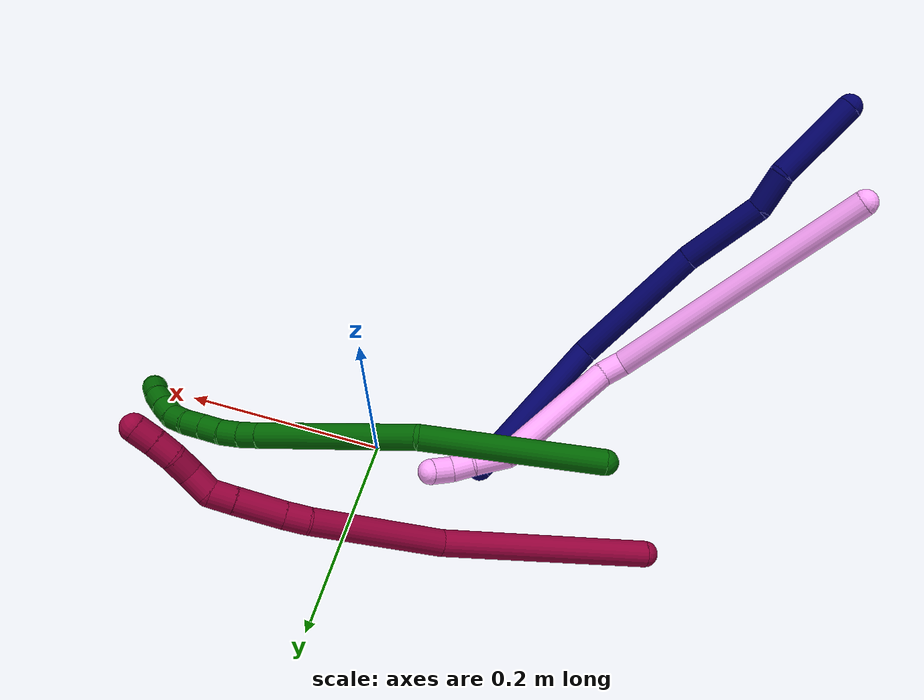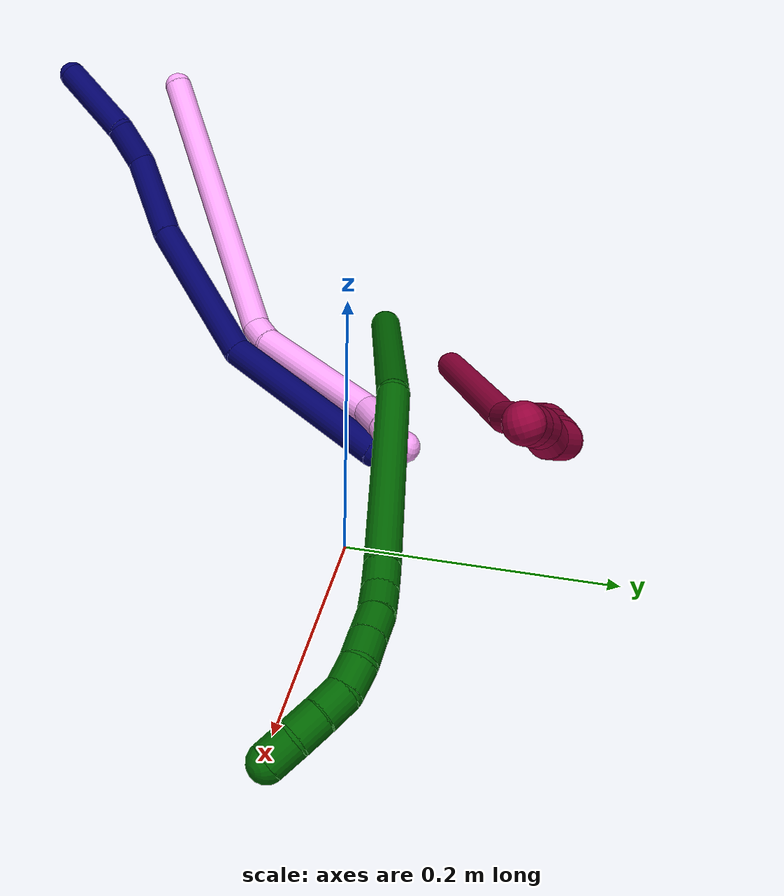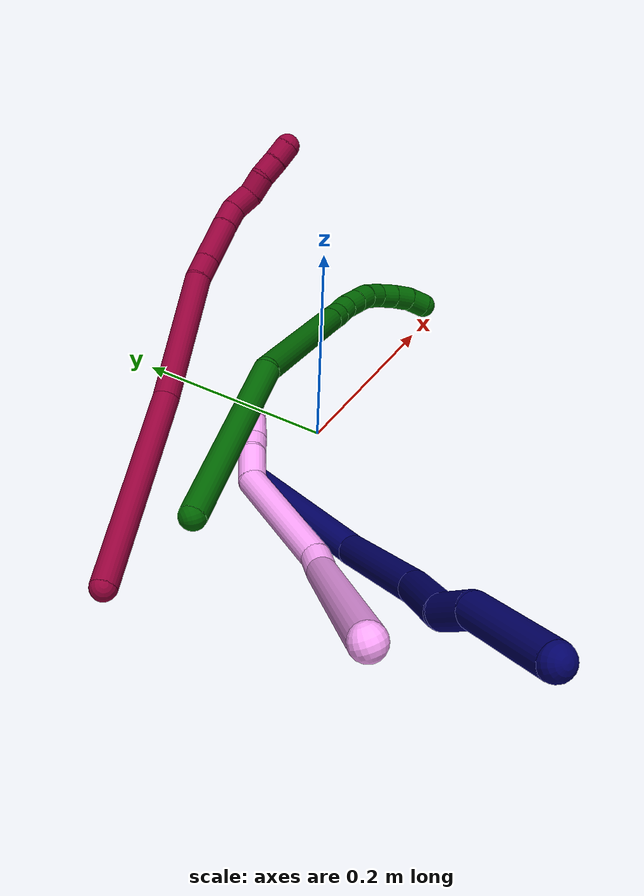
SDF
<sdf version="1.7">
 <world name="default">
  <model name="4">
   <static>0</static>
   <link name="4">
    <collision name="collision-cylinder-e_1_1_4">
     <pose>0.065959 0.120019 0.002861 -1.54696 0.502395 -0.491035</pose>
     <geometry><cylinder><radius>0.0125</radius><length>0.273959</length></cylinder></geometry>
     <surface>
      <friction><ode><mu>1.16</mu><mu2>1.16</mu2><slip1>0</slip1><slip2>0</slip2></ode></friction>
      <contact><ode><kp>1e+06</kp><kd>1</kd><max_vel>0</max_vel><min_depth>0.001</min_depth></ode></contact>
     </surface>
    </collision>
    <visual name="visual-cylinder-e_1_1_4">
     <pose>0.065959 0.120019 0.002861 -1.54696 0.502395 -0.491035</pose>
     <geometry><cylinder><radius>0.0125</radius><length>0.273959</length></cylinder></geometry>
     <material><ambient>1 0.65098 0.996078 1</ambient></material>
    </visual>
    <collision name="collision-cylinder-e_2_4_5">
     <pose>0.136768 0.249248 0.000972 -2.04702 0.437728 -0.699959</pose>
     <geometry><cylinder><radius>0.0125</radius><length>0.022882</length></cylinder></geometry>
     <surface>
      <friction><ode><mu>1.16</mu><mu2>1.16</mu2><slip1>0</slip1><slip2>0</slip2></ode></friction>
      <contact><ode><kp>1e+06</kp><kd>1</kd><max_vel>0</max_vel><min_depth>0.001</min_depth></ode></contact>
     </surface>
    </collision>
    <visual name="visual-cylinder-e_2_4_5">
     <pose>0.136768 0.249248 0.000972 -2.04702 0.437728 -0.699959</pose>
     <geometry><cylinder><radius>0.0125</radius><length>0.022882</length></cylinder></geometry>
     <material><ambient>1 0.65098 0.996078 1</ambient></material>
    </visual>
    <collision name="collision-cylinder-e_3_5_6">
     <pose>0.177742 0.29765 -0.035799 -2.25582 0.619909 -1.18783</pose>
     <geometry><cylinder><radius>0.0125</radius><length>0.124362</length></cylinder></geometry>
     <surface>
      <friction><ode><mu>1.16</mu><mu2>1.16</mu2><slip1>0</slip1><slip2>0</slip2></ode></friction>
      <contact><ode><kp>1e+06</kp><kd>1</kd><max_vel>0</max_vel><min_depth>0.001</min_depth></ode></contact>
     </surface>
    </collision>
    <visual name="visual-cylinder-e_3_5_6">
     <pose>0.177742 0.29765 -0.035799 -2.25582 0.619909 -1.18783</pose>
     <geometry><cylinder><radius>0.0125</radius><length>0.124362</length></cylinder></geometry>
     <material><ambient>1 0.65098 0.996078 1</ambient></material>
    </visual>
    <collision name="collision-cylinder-e_4_6_7">
     <pose>0.216335 0.350396 -0.078446 -2.23576 0.142373 -0.290979</pose>
     <geometry><cylinder><radius>0.0125</radius><length>0.034795</length></cylinder></geometry>
     <surface>
      <friction><ode><mu>1.16</mu><mu2>1.16</mu2><slip1>0</slip1><slip2>0</slip2></ode></friction>
      <contact><ode><kp>1e+06</kp><kd>1</kd><max_vel>0</max_vel><min_depth>0.001</min_depth></ode></contact>
     </surface>
    </collision>
    <visual name="visual-cylinder-e_4_6_7">
     <pose>0.216335 0.350396 -0.078446 -2.23576 0.142373 -0.290979</pose>
     <geometry><cylinder><radius>0.0125</radius><length>0.034795</length></cylinder></geometry>
     <material><ambient>1 0.65098 0.996078 1</ambient></material>
    </visual>
    <collision name="collision-cylinder-e_5_7_8">
     <pose>0.22107 0.373674 -0.093763 -2.02022 0.206889 -0.327706</pose>
     <geometry><cylinder><radius>0.0125</radius><length>0.022067</length></cylinder></geometry>
     <surface>
      <friction><ode><mu>1.16</mu><mu2>1.16</mu2><slip1>0</slip1><slip2>0</slip2></ode></friction>
      <contact><ode><kp>1e+06</kp><kd>1</kd><max_vel>0</max_vel><min_depth>0.001</min_depth></ode></contact>
     </surface>
    </collision>
    <visual name="visual-cylinder-e_5_7_8">
     <pose>0.22107 0.373674 -0.093763 -2.02022 0.206889 -0.327706</pose>
     <geometry><cylinder><radius>0.0125</radius><length>0.022067</length></cylinder></geometry>
     <material><ambient>1 0.65098 0.996078 1</ambient></material>
    </visual>
    <collision name="collision-cylinder-e_6_8_2">
     <pose>0.223437 0.390097 -0.10714 -2.48477 0.009172 -0.026916</pose>
     <geometry><cylinder><radius>0.0125</radius><length>0.021935</length></cylinder></geometry>
     <surface>
      <friction><ode><mu>1.16</mu><mu2>1.16</mu2><slip1>0</slip1><slip2>0</slip2></ode></friction>
      <contact><ode><kp>1e+06</kp><kd>1</kd><max_vel>0</max_vel><min_depth>0.001</min_depth></ode></contact>
     </surface>
    </collision>
    <visual name="visual-cylinder-e_6_8_2">
     <pose>0.223437 0.390097 -0.10714 -2.48477 0.009172 -0.026916</pose>
     <geometry><cylinder><radius>0.0125</radius><length>0.021935</length></cylinder></geometry>
     <material><ambient>1 0.65098 0.996078 1</ambient></material>
    </visual>
    <collision name="collision-sphere-2">
     <pose>0.223538 0.396793 -0.115825 0 -0 0</pose>
     <geometry><sphere><radius>0.0125</radius></sphere></geometry>
     <surface>
      <friction><ode><mu>1.16</mu><mu2>1.16</mu2><slip1>0</slip1><slip2>0</slip2></ode></friction>
      <contact><ode><kp>1e+06</kp><kd>1</kd><max_vel>0</max_vel><min_depth>0.001</min_depth></ode></contact>
     </surface>
    </collision>
    <visual name="visual-sphere-2">
     <pose>0.223538 0.396793 -0.115825 0 -0 0</pose>
     <geometry><sphere><radius>0.0125</radius></sphere></geometry>
     <material><ambient>1 0.65098 0.996078 1</ambient></material>
    </visual>
    <collision name="collision-sphere-4">
     <pose>0.131918 0.240039 0.005723 0 -0 0</pose>
     <geometry><sphere><radius>0.0125</radius></sphere></geometry>
     <surface>
      <friction><ode><mu>1.16</mu><mu2>1.16</mu2><slip1>0</slip1><slip2>0</slip2></ode></friction>
      <contact><ode><kp>1e+06</kp><kd>1</kd><max_vel>0</max_vel><min_depth>0.001</min_depth></ode></contact>
     </surface>
    </collision>
    <visual name="visual-sphere-4">
     <pose>0.131918 0.240039 0.005723 0 -0 0</pose>
     <geometry><sphere><radius>0.0125</radius></sphere></geometry>
     <material><ambient>1 0.65098 0.996078 1</ambient></material>
    </visual>
    <collision name="collision-sphere-1">
     <geometry><sphere><radius>0.0125</radius></sphere></geometry>
     <surface>
      <friction><ode><mu>1.16</mu><mu2>1.16</mu2><slip1>0</slip1><slip2>0</slip2></ode></friction>
      <contact><ode><kp>1e+06</kp><kd>1</kd><max_vel>0</max_vel><min_depth>0.001</min_depth></ode></contact>
     </surface>
    </collision>
    <visual name="visual-sphere-1">
     <geometry><sphere><radius>0.0125</radius></sphere></geometry>
     <material><ambient>1 0.65098 0.996078 1</ambient></material>
    </visual>
    <collision name="collision-sphere-8">
     <pose>0.223337 0.3834 -0.098455 0 -0 0</pose>
     <geometry><sphere><radius>0.0125</radius></sphere></geometry>
     <surface>
      <friction><ode><mu>1.16</mu><mu2>1.16</mu2><slip1>0</slip1><slip2>0</slip2></ode></friction>
      <contact><ode><kp>1e+06</kp><kd>1</kd><max_vel>0</max_vel><min_depth>0.001</min_depth></ode></contact>
     </surface>
    </collision>
    <visual name="visual-sphere-8">
     <pose>0.223337 0.3834 -0.098455 0 -0 0</pose>
     <geometry><sphere><radius>0.0125</radius></sphere></geometry>
     <material><ambient>1 0.65098 0.996078 1</ambient></material>
    </visual>
    <collision name="collision-sphere-5">
     <pose>0.141618 0.258457 -0.003778 0 -0 0</pose>
     <geometry><sphere><radius>0.0125</radius></sphere></geometry>
     <surface>
      <friction><ode><mu>1.16</mu><mu2>1.16</mu2><slip1>0</slip1><slip2>0</slip2></ode></friction>
      <contact><ode><kp>1e+06</kp><kd>1</kd><max_vel>0</max_vel><min_depth>0.001</min_depth></ode></contact>
     </surface>
    </collision>
    <visual name="visual-sphere-5">
     <pose>0.141618 0.258457 -0.003778 0 -0 0</pose>
     <geometry><sphere><radius>0.0125</radius></sphere></geometry>
     <material><ambient>1 0.65098 0.996078 1</ambient></material>
    </visual>
    <collision name="collision-sphere-6">
     <pose>0.213867 0.336844 -0.06782 0 -0 0</pose>
     <geometry><sphere><radius>0.0125</radius></sphere></geometry>
     <surface>
      <friction><ode><mu>1.16</mu><mu2>1.16</mu2><slip1>0</slip1><slip2>0</slip2></ode></friction>
      <contact><ode><kp>1e+06</kp><kd>1</kd><max_vel>0</max_vel><min_depth>0.001</min_depth></ode></contact>
     </surface>
    </collision>
    <visual name="visual-sphere-6">
     <pose>0.213867 0.336844 -0.06782 0 -0 0</pose>
     <geometry><sphere><radius>0.0125</radius></sphere></geometry>
     <material><ambient>1 0.65098 0.996078 1</ambient></material>
    </visual>
    <collision name="collision-sphere-7">
     <pose>0.218804 0.363948 -0.089072 0 -0 0</pose>
     <geometry><sphere><radius>0.0125</radius></sphere></geometry>
     <surface>
      <friction><ode><mu>1.16</mu><mu2>1.16</mu2><slip1>0</slip1><slip2>0</slip2></ode></friction>
      <contact><ode><kp>1e+06</kp><kd>1</kd><max_vel>0</max_vel><min_depth>0.001</min_depth></ode></contact>
     </surface>
    </collision>
    <visual name="visual-sphere-7">
     <pose>0.218804 0.363948 -0.089072 0 -0 0</pose>
     <geometry><sphere><radius>0.0125</radius></sphere></geometry>
     <material><ambient>1 0.65098 0.996078 1</ambient></material>
    </visual>
    <inertial>
     <pose>0.121222 0.209189 -0.021589 0 -0 0</pose>
     <mass>0.5</mass>
     <inertia>
      <ixx>0.000569</ixx>
      <ixy>0</ixy>
      <ixz>0</ixz>
      <iyy>-0.000357</iyy>
      <iyz>0</iyz>
      <izz>-0.00256</izz>
     </inertia>
    </inertial>
   </link>
   <pose>-0.393026 -0.257792 0.231694 -2.66441 0.527124 1.93677</pose>
  </model>
  <model name="6">
   <static>0</static>
   <link name="6">
    <collision name="collision-cylinder-e_1_1_4">
     <pose>0.060648 0.018244 -0.061993 -2.85538 0.753687 -2.44324</pose>
     <geometry><cylinder><radius>0.0125</radius><length>0.177247</length></cylinder></geometry>
     <surface>
      <friction><ode><mu>1.16</mu><mu2>1.16</mu2><slip1>0</slip1><slip2>0</slip2></ode></friction>
      <contact><ode><kp>1e+06</kp><kd>1</kd><max_vel>0</max_vel><min_depth>0.001</min_depth></ode></contact>
     </surface>
    </collision>
    <visual name="visual-cylinder-e_1_1_4">
     <pose>0.060648 0.018244 -0.061993 -2.85538 0.753687 -2.44324</pose>
     <geometry><cylinder><radius>0.0125</radius><length>0.177247</length></cylinder></geometry>
     <material><ambient>0 0.392157 0.003922 1</ambient></material>
    </visual>
    <collision name="collision-cylinder-e_2_4_5">
     <pose>0.157405 0.08045 -0.181815 -2.4916 0.461312 -1.21736</pose>
     <geometry><cylinder><radius>0.0125</radius><length>0.162244</length></cylinder></geometry>
     <surface>
      <friction><ode><mu>1.16</mu><mu2>1.16</mu2><slip1>0</slip1><slip2>0</slip2></ode></friction>
      <contact><ode><kp>1e+06</kp><kd>1</kd><max_vel>0</max_vel><min_depth>0.001</min_depth></ode></contact>
     </surface>
    </collision>
    <visual name="visual-cylinder-e_2_4_5">
     <pose>0.157405 0.08045 -0.181815 -2.4916 0.461312 -1.21736</pose>
     <geometry><cylinder><radius>0.0125</radius><length>0.162244</length></cylinder></geometry>
     <material><ambient>0 0.392157 0.003922 1</ambient></material>
    </visual>
    <collision name="collision-cylinder-e_3_5_6">
     <pose>0.197746 0.129838 -0.246912 -2.50033 0.436577 -1.1778</pose>
     <geometry><cylinder><radius>0.0125</radius><length>0.020017</length></cylinder></geometry>
     <surface>
      <friction><ode><mu>1.16</mu><mu2>1.16</mu2><slip1>0</slip1><slip2>0</slip2></ode></friction>
      <contact><ode><kp>1e+06</kp><kd>1</kd><max_vel>0</max_vel><min_depth>0.001</min_depth></ode></contact>
     </surface>
    </collision>
    <visual name="visual-cylinder-e_3_5_6">
     <pose>0.197746 0.129838 -0.246912 -2.50033 0.436577 -1.1778</pose>
     <geometry><cylinder><radius>0.0125</radius><length>0.020017</length></cylinder></geometry>
     <material><ambient>0 0.392157 0.003922 1</ambient></material>
    </visual>
    <collision name="collision-cylinder-e_4_6_7">
     <pose>0.206835 0.139467 -0.262043 -2.65066 0.49881 -1.58738</pose>
     <geometry><cylinder><radius>0.0125</radius><length>0.020306</length></cylinder></geometry>
     <surface>
      <friction><ode><mu>1.16</mu><mu2>1.16</mu2><slip1>0</slip1><slip2>0</slip2></ode></friction>
      <contact><ode><kp>1e+06</kp><kd>1</kd><max_vel>0</max_vel><min_depth>0.001</min_depth></ode></contact>
     </surface>
    </collision>
    <visual name="visual-cylinder-e_4_6_7">
     <pose>0.206835 0.139467 -0.262043 -2.65066 0.49881 -1.58738</pose>
     <geometry><cylinder><radius>0.0125</radius><length>0.020306</length></cylinder></geometry>
     <material><ambient>0 0.392157 0.003922 1</ambient></material>
    </visual>
    <collision name="collision-cylinder-e_5_7_8">
     <pose>0.215056 0.147529 -0.278567 -2.72247 0.340914 -1.36079</pose>
     <geometry><cylinder><radius>0.0125</radius><length>0.020123</length></cylinder></geometry>
     <surface>
      <friction><ode><mu>1.16</mu><mu2>1.16</mu2><slip1>0</slip1><slip2>0</slip2></ode></friction>
      <contact><ode><kp>1e+06</kp><kd>1</kd><max_vel>0</max_vel><min_depth>0.001</min_depth></ode></contact>
     </surface>
    </collision>
    <visual name="visual-cylinder-e_5_7_8">
     <pose>0.215056 0.147529 -0.278567 -2.72247 0.340914 -1.36079</pose>
     <geometry><cylinder><radius>0.0125</radius><length>0.020123</length></cylinder></geometry>
     <material><ambient>0 0.392157 0.003922 1</ambient></material>
    </visual>
    <collision name="collision-cylinder-e_6_8_9">
     <pose>0.221753 0.15543 -0.295768 -2.69947 0.339179 -1.3022</pose>
     <geometry><cylinder><radius>0.0125</radius><length>0.020037</length></cylinder></geometry>
     <surface>
      <friction><ode><mu>1.16</mu><mu2>1.16</mu2><slip1>0</slip1><slip2>0</slip2></ode></friction>
      <contact><ode><kp>1e+06</kp><kd>1</kd><max_vel>0</max_vel><min_depth>0.001</min_depth></ode></contact>
     </surface>
    </collision>
    <visual name="visual-cylinder-e_6_8_9">
     <pose>0.221753 0.15543 -0.295768 -2.69947 0.339179 -1.3022</pose>
     <geometry><cylinder><radius>0.0125</radius><length>0.020037</length></cylinder></geometry>
     <material><ambient>0 0.392157 0.003922 1</ambient></material>
    </visual>
    <collision name="collision-cylinder-e_7_9_10">
     <pose>0.22593 0.164318 -0.313026 -2.63431 0.084392 -0.322914</pose>
     <geometry><cylinder><radius>0.0125</radius><length>0.02002</length></cylinder></geometry>
     <surface>
      <friction><ode><mu>1.16</mu><mu2>1.16</mu2><slip1>0</slip1><slip2>0</slip2></ode></friction>
      <contact><ode><kp>1e+06</kp><kd>1</kd><max_vel>0</max_vel><min_depth>0.001</min_depth></ode></contact>
     </surface>
    </collision>
    <visual name="visual-cylinder-e_7_9_10">
     <pose>0.22593 0.164318 -0.313026 -2.63431 0.084392 -0.322914</pose>
     <geometry><cylinder><radius>0.0125</radius><length>0.02002</length></cylinder></geometry>
     <material><ambient>0 0.392157 0.003922 1</ambient></material>
    </visual>
    <collision name="collision-cylinder-e_8_10_11">
     <pose>0.225084 0.172083 -0.331159 -2.8409 -0.169869 1.02404</pose>
     <geometry><cylinder><radius>0.0125</radius><length>0.020001</length></cylinder></geometry>
     <surface>
      <friction><ode><mu>1.16</mu><mu2>1.16</mu2><slip1>0</slip1><slip2>0</slip2></ode></friction>
      <contact><ode><kp>1e+06</kp><kd>1</kd><max_vel>0</max_vel><min_depth>0.001</min_depth></ode></contact>
     </surface>
    </collision>
    <visual name="visual-cylinder-e_8_10_11">
     <pose>0.225084 0.172083 -0.331159 -2.8409 -0.169869 1.02404</pose>
     <geometry><cylinder><radius>0.0125</radius><length>0.020001</length></cylinder></geometry>
     <material><ambient>0 0.392157 0.003922 1</ambient></material>
    </visual>
    <collision name="collision-cylinder-e_9_11_12">
     <pose>0.220774 0.178115 -0.349708 -2.81317 -0.265014 1.35481</pose>
     <geometry><cylinder><radius>0.0125</radius><length>0.02</length></cylinder></geometry>
     <surface>
      <friction><ode><mu>1.16</mu><mu2>1.16</mu2><slip1>0</slip1><slip2>0</slip2></ode></friction>
      <contact><ode><kp>1e+06</kp><kd>1</kd><max_vel>0</max_vel><min_depth>0.001</min_depth></ode></contact>
     </surface>
    </collision>
    <visual name="visual-cylinder-e_9_11_12">
     <pose>0.220774 0.178115 -0.349708 -2.81317 -0.265014 1.35481</pose>
     <geometry><cylinder><radius>0.0125</radius><length>0.02</length></cylinder></geometry>
     <material><ambient>0 0.392157 0.003922 1</ambient></material>
    </visual>
    <collision name="collision-cylinder-e_10_12_2">
     <pose>0.213676 0.185103 -0.366905 -2.69359 -0.464217 1.60761</pose>
     <geometry><cylinder><radius>0.0125</radius><length>0.020005</length></cylinder></geometry>
     <surface>
      <friction><ode><mu>1.16</mu><mu2>1.16</mu2><slip1>0</slip1><slip2>0</slip2></ode></friction>
      <contact><ode><kp>1e+06</kp><kd>1</kd><max_vel>0</max_vel><min_depth>0.001</min_depth></ode></contact>
     </surface>
    </collision>
    <visual name="visual-cylinder-e_10_12_2">
     <pose>0.213676 0.185103 -0.366905 -2.69359 -0.464217 1.60761</pose>
     <geometry><cylinder><radius>0.0125</radius><length>0.020005</length></cylinder></geometry>
     <material><ambient>0 0.392157 0.003922 1</ambient></material>
    </visual>
    <collision name="collision-sphere-2">
     <pose>0.209198 0.188977 -0.374966 0 -0 0</pose>
     <geometry><sphere><radius>0.0125</radius></sphere></geometry>
     <surface>
      <friction><ode><mu>1.16</mu><mu2>1.16</mu2><slip1>0</slip1><slip2>0</slip2></ode></friction>
      <contact><ode><kp>1e+06</kp><kd>1</kd><max_vel>0</max_vel><min_depth>0.001</min_depth></ode></contact>
     </surface>
    </collision>
    <visual name="visual-sphere-2">
     <pose>0.209198 0.188977 -0.374966 0 -0 0</pose>
     <geometry><sphere><radius>0.0125</radius></sphere></geometry>
     <material><ambient>0 0.392157 0.003922 1</ambient></material>
    </visual>
    <collision name="collision-sphere-12">
     <pose>0.218154 0.181228 -0.358844 0 -0 0</pose>
     <geometry><sphere><radius>0.0125</radius></sphere></geometry>
     <surface>
      <friction><ode><mu>1.16</mu><mu2>1.16</mu2><slip1>0</slip1><slip2>0</slip2></ode></friction>
      <contact><ode><kp>1e+06</kp><kd>1</kd><max_vel>0</max_vel><min_depth>0.001</min_depth></ode></contact>
     </surface>
    </collision>
    <visual name="visual-sphere-12">
     <pose>0.218154 0.181228 -0.358844 0 -0 0</pose>
     <geometry><sphere><radius>0.0125</radius></sphere></geometry>
     <material><ambient>0 0.392157 0.003922 1</ambient></material>
    </visual>
    <collision name="collision-sphere-11">
     <pose>0.223393 0.175003 -0.340573 0 -0 0</pose>
     <geometry><sphere><radius>0.0125</radius></sphere></geometry>
     <surface>
      <friction><ode><mu>1.16</mu><mu2>1.16</mu2><slip1>0</slip1><slip2>0</slip2></ode></friction>
      <contact><ode><kp>1e+06</kp><kd>1</kd><max_vel>0</max_vel><min_depth>0.001</min_depth></ode></contact>
     </surface>
    </collision>
    <visual name="visual-sphere-11">
     <pose>0.223393 0.175003 -0.340573 0 -0 0</pose>
     <geometry><sphere><radius>0.0125</radius></sphere></geometry>
     <material><ambient>0 0.392157 0.003922 1</ambient></material>
    </visual>
    <collision name="collision-sphere-10">
     <pose>0.226774 0.169164 -0.321744 0 -0 0</pose>
     <geometry><sphere><radius>0.0125</radius></sphere></geometry>
     <surface>
      <friction><ode><mu>1.16</mu><mu2>1.16</mu2><slip1>0</slip1><slip2>0</slip2></ode></friction>
      <contact><ode><kp>1e+06</kp><kd>1</kd><max_vel>0</max_vel><min_depth>0.001</min_depth></ode></contact>
     </surface>
    </collision>
    <visual name="visual-sphere-10">
     <pose>0.226774 0.169164 -0.321744 0 -0 0</pose>
     <geometry><sphere><radius>0.0125</radius></sphere></geometry>
     <material><ambient>0 0.392157 0.003922 1</ambient></material>
    </visual>
    <collision name="collision-sphere-9">
     <pose>0.225087 0.159472 -0.304308 0 -0 0</pose>
     <geometry><sphere><radius>0.0125</radius></sphere></geometry>
     <surface>
      <friction><ode><mu>1.16</mu><mu2>1.16</mu2><slip1>0</slip1><slip2>0</slip2></ode></friction>
      <contact><ode><kp>1e+06</kp><kd>1</kd><max_vel>0</max_vel><min_depth>0.001</min_depth></ode></contact>
     </surface>
    </collision>
    <visual name="visual-sphere-9">
     <pose>0.225087 0.159472 -0.304308 0 -0 0</pose>
     <geometry><sphere><radius>0.0125</radius></sphere></geometry>
     <material><ambient>0 0.392157 0.003922 1</ambient></material>
    </visual>
    <collision name="collision-sphere-4">
     <pose>0.121295 0.036488 -0.123985 0 -0 0</pose>
     <geometry><sphere><radius>0.0125</radius></sphere></geometry>
     <surface>
      <friction><ode><mu>1.16</mu><mu2>1.16</mu2><slip1>0</slip1><slip2>0</slip2></ode></friction>
      <contact><ode><kp>1e+06</kp><kd>1</kd><max_vel>0</max_vel><min_depth>0.001</min_depth></ode></contact>
     </surface>
    </collision>
    <visual name="visual-sphere-4">
     <pose>0.121295 0.036488 -0.123985 0 -0 0</pose>
     <geometry><sphere><radius>0.0125</radius></sphere></geometry>
     <material><ambient>0 0.392157 0.003922 1</ambient></material>
    </visual>
    <collision name="collision-sphere-1">
     <geometry><sphere><radius>0.0125</radius></sphere></geometry>
     <surface>
      <friction><ode><mu>1.16</mu><mu2>1.16</mu2><slip1>0</slip1><slip2>0</slip2></ode></friction>
      <contact><ode><kp>1e+06</kp><kd>1</kd><max_vel>0</max_vel><min_depth>0.001</min_depth></ode></contact>
     </surface>
    </collision>
    <visual name="visual-sphere-1">
     <geometry><sphere><radius>0.0125</radius></sphere></geometry>
     <material><ambient>0 0.392157 0.003922 1</ambient></material>
    </visual>
    <collision name="collision-sphere-8">
     <pose>0.21842 0.151388 -0.287229 0 -0 0</pose>
     <geometry><sphere><radius>0.0125</radius></sphere></geometry>
     <surface>
      <friction><ode><mu>1.16</mu><mu2>1.16</mu2><slip1>0</slip1><slip2>0</slip2></ode></friction>
      <contact><ode><kp>1e+06</kp><kd>1</kd><max_vel>0</max_vel><min_depth>0.001</min_depth></ode></contact>
     </surface>
    </collision>
    <visual name="visual-sphere-8">
     <pose>0.21842 0.151388 -0.287229 0 -0 0</pose>
     <geometry><sphere><radius>0.0125</radius></sphere></geometry>
     <material><ambient>0 0.392157 0.003922 1</ambient></material>
    </visual>
    <collision name="collision-sphere-5">
     <pose>0.193514 0.124412 -0.239644 0 -0 0</pose>
     <geometry><sphere><radius>0.0125</radius></sphere></geometry>
     <surface>
      <friction><ode><mu>1.16</mu><mu2>1.16</mu2><slip1>0</slip1><slip2>0</slip2></ode></friction>
      <contact><ode><kp>1e+06</kp><kd>1</kd><max_vel>0</max_vel><min_depth>0.001</min_depth></ode></contact>
     </surface>
    </collision>
    <visual name="visual-sphere-5">
     <pose>0.193514 0.124412 -0.239644 0 -0 0</pose>
     <geometry><sphere><radius>0.0125</radius></sphere></geometry>
     <material><ambient>0 0.392157 0.003922 1</ambient></material>
    </visual>
    <collision name="collision-sphere-6">
     <pose>0.201978 0.135263 -0.25418 0 -0 0</pose>
     <geometry><sphere><radius>0.0125</radius></sphere></geometry>
     <surface>
      <friction><ode><mu>1.16</mu><mu2>1.16</mu2><slip1>0</slip1><slip2>0</slip2></ode></friction>
      <contact><ode><kp>1e+06</kp><kd>1</kd><max_vel>0</max_vel><min_depth>0.001</min_depth></ode></contact>
     </surface>
    </collision>
    <visual name="visual-sphere-6">
     <pose>0.201978 0.135263 -0.25418 0 -0 0</pose>
     <geometry><sphere><radius>0.0125</radius></sphere></geometry>
     <material><ambient>0 0.392157 0.003922 1</ambient></material>
    </visual>
    <collision name="collision-sphere-7">
     <pose>0.211692 0.14367 -0.269906 0 -0 0</pose>
     <geometry><sphere><radius>0.0125</radius></sphere></geometry>
     <surface>
      <friction><ode><mu>1.16</mu><mu2>1.16</mu2><slip1>0</slip1><slip2>0</slip2></ode></friction>
      <contact><ode><kp>1e+06</kp><kd>1</kd><max_vel>0</max_vel><min_depth>0.001</min_depth></ode></contact>
     </surface>
    </collision>
    <visual name="visual-sphere-7">
     <pose>0.211692 0.14367 -0.269906 0 -0 0</pose>
     <geometry><sphere><radius>0.0125</radius></sphere></geometry>
     <material><ambient>0 0.392157 0.003922 1</ambient></material>
    </visual>
    <inertial>
     <pose>0.141864 0.083594 -0.179013 0 -0 0</pose>
     <mass>0.5</mass>
     <inertia>
      <ixx>-0.000658</ixx>
      <ixy>0</ixy>
      <ixz>0</ixz>
      <iyy>-0.000118</iyy>
      <iyz>0</iyz>
      <izz>-0.000812</izz>
     </inertia>
    </inertial>
   </link>
   <pose>-0.227486 -0.015238 0.076167 -1.62269 -0.453304 1.02022</pose>
  </model>
  <model name="7">
   <static>0</static>
   <link name="7">
    <collision name="collision-cylinder-e_1_1_4">
     <pose>-0.032165 0.004868 0.071407 -0.068072 -0.422356 0.014598</pose>
     <geometry><cylinder><radius>0.0125</radius><length>0.156936</length></cylinder></geometry>
     <surface>
      <friction><ode><mu>1.16</mu><mu2>1.16</mu2><slip1>0</slip1><slip2>0</slip2></ode></friction>
      <contact><ode><kp>1e+06</kp><kd>1</kd><max_vel>0</max_vel><min_depth>0.001</min_depth></ode></contact>
     </surface>
    </collision>
    <visual name="visual-cylinder-e_1_1_4">
     <pose>-0.032165 0.004868 0.071407 -0.068072 -0.422356 0.014598</pose>
     <geometry><cylinder><radius>0.0125</radius><length>0.156936</length></cylinder></geometry>
     <material><ambient>0.003922 0 0.403922 1</ambient></material>
    </visual>
    <collision name="collision-cylinder-e_2_4_5">
     <pose>-0.069682 0.022132 0.209735 -0.183149 -0.078484 0.007211</pose>
     <geometry><cylinder><radius>0.0125</radius><length>0.136539</length></cylinder></geometry>
     <surface>
      <friction><ode><mu>1.16</mu><mu2>1.16</mu2><slip1>0</slip1><slip2>0</slip2></ode></friction>
      <contact><ode><kp>1e+06</kp><kd>1</kd><max_vel>0</max_vel><min_depth>0.001</min_depth></ode></contact>
     </surface>
    </collision>
    <visual name="visual-cylinder-e_2_4_5">
     <pose>-0.069682 0.022132 0.209735 -0.183149 -0.078484 0.007211</pose>
     <geometry><cylinder><radius>0.0125</radius><length>0.136539</length></cylinder></geometry>
     <material><ambient>0.003922 0 0.403922 1</ambient></material>
    </visual>
    <collision name="collision-cylinder-e_3_5_6">
     <pose>-0.073203 0.046942 0.31593 -0.306173 0.044445 -0.006859</pose>
     <geometry><cylinder><radius>0.0125</radius><length>0.082459</length></cylinder></geometry>
     <surface>
      <friction><ode><mu>1.16</mu><mu2>1.16</mu2><slip1>0</slip1><slip2>0</slip2></ode></friction>
      <contact><ode><kp>1e+06</kp><kd>1</kd><max_vel>0</max_vel><min_depth>0.001</min_depth></ode></contact>
     </surface>
    </collision>
    <visual name="visual-cylinder-e_3_5_6">
     <pose>-0.073203 0.046942 0.31593 -0.306173 0.044445 -0.006859</pose>
     <geometry><cylinder><radius>0.0125</radius><length>0.082459</length></cylinder></geometry>
     <material><ambient>0.003922 0 0.403922 1</ambient></material>
    </visual>
    <collision name="collision-cylinder-e_4_6_7">
     <pose>-0.069793 0.058206 0.374174 0.060599 0.08287 0.002513</pose>
     <geometry><cylinder><radius>0.0125</radius><length>0.038141</length></cylinder></geometry>
     <surface>
      <friction><ode><mu>1.16</mu><mu2>1.16</mu2><slip1>0</slip1><slip2>0</slip2></ode></friction>
      <contact><ode><kp>1e+06</kp><kd>1</kd><max_vel>0</max_vel><min_depth>0.001</min_depth></ode></contact>
     </surface>
    </collision>
    <visual name="visual-cylinder-e_4_6_7">
     <pose>-0.069793 0.058206 0.374174 0.060599 0.08287 0.002513</pose>
     <geometry><cylinder><radius>0.0125</radius><length>0.038141</length></cylinder></geometry>
     <material><ambient>0.003922 0 0.403922 1</ambient></material>
    </visual>
    <collision name="collision-cylinder-e_5_7_2">
     <pose>-0.077524 0.062559 0.434722 -0.131595 -0.218442 0.014451</pose>
     <geometry><cylinder><radius>0.0125</radius><length>0.085924</length></cylinder></geometry>
     <surface>
      <friction><ode><mu>1.16</mu><mu2>1.16</mu2><slip1>0</slip1><slip2>0</slip2></ode></friction>
      <contact><ode><kp>1e+06</kp><kd>1</kd><max_vel>0</max_vel><min_depth>0.001</min_depth></ode></contact>
     </surface>
    </collision>
    <visual name="visual-cylinder-e_5_7_2">
     <pose>-0.077524 0.062559 0.434722 -0.131595 -0.218442 0.014451</pose>
     <geometry><cylinder><radius>0.0125</radius><length>0.085924</length></cylinder></geometry>
     <material><ambient>0.003922 0 0.403922 1</ambient></material>
    </visual>
    <collision name="collision-sphere-2">
     <pose>-0.086834 0.068062 0.476301 0 -0 0</pose>
     <geometry><sphere><radius>0.0125</radius></sphere></geometry>
     <surface>
      <friction><ode><mu>1.16</mu><mu2>1.16</mu2><slip1>0</slip1><slip2>0</slip2></ode></friction>
      <contact><ode><kp>1e+06</kp><kd>1</kd><max_vel>0</max_vel><min_depth>0.001</min_depth></ode></contact>
     </surface>
    </collision>
    <visual name="visual-sphere-2">
     <pose>-0.086834 0.068062 0.476301 0 -0 0</pose>
     <geometry><sphere><radius>0.0125</radius></sphere></geometry>
     <material><ambient>0.003922 0 0.403922 1</ambient></material>
    </visual>
    <collision name="collision-sphere-7">
     <pose>-0.068214 0.057055 0.393144 0 -0 0</pose>
     <geometry><sphere><radius>0.0125</radius></sphere></geometry>
     <surface>
      <friction><ode><mu>1.16</mu><mu2>1.16</mu2><slip1>0</slip1><slip2>0</slip2></ode></friction>
      <contact><ode><kp>1e+06</kp><kd>1</kd><max_vel>0</max_vel><min_depth>0.001</min_depth></ode></contact>
     </surface>
    </collision>
    <visual name="visual-sphere-7">
     <pose>-0.068214 0.057055 0.393144 0 -0 0</pose>
     <geometry><sphere><radius>0.0125</radius></sphere></geometry>
     <material><ambient>0.003922 0 0.403922 1</ambient></material>
    </visual>
    <collision name="collision-sphere-6">
     <pose>-0.071371 0.059357 0.355203 0 -0 0</pose>
     <geometry><sphere><radius>0.0125</radius></sphere></geometry>
     <surface>
      <friction><ode><mu>1.16</mu><mu2>1.16</mu2><slip1>0</slip1><slip2>0</slip2></ode></friction>
      <contact><ode><kp>1e+06</kp><kd>1</kd><max_vel>0</max_vel><min_depth>0.001</min_depth></ode></contact>
     </surface>
    </collision>
    <visual name="visual-sphere-6">
     <pose>-0.071371 0.059357 0.355203 0 -0 0</pose>
     <geometry><sphere><radius>0.0125</radius></sphere></geometry>
     <material><ambient>0.003922 0 0.403922 1</ambient></material>
    </visual>
    <collision name="collision-sphere-5">
     <pose>-0.075035 0.034528 0.276656 0 -0 0</pose>
     <geometry><sphere><radius>0.0125</radius></sphere></geometry>
     <surface>
      <friction><ode><mu>1.16</mu><mu2>1.16</mu2><slip1>0</slip1><slip2>0</slip2></ode></friction>
      <contact><ode><kp>1e+06</kp><kd>1</kd><max_vel>0</max_vel><min_depth>0.001</min_depth></ode></contact>
     </surface>
    </collision>
    <visual name="visual-sphere-5">
     <pose>-0.075035 0.034528 0.276656 0 -0 0</pose>
     <geometry><sphere><radius>0.0125</radius></sphere></geometry>
     <material><ambient>0.003922 0 0.403922 1</ambient></material>
    </visual>
    <collision name="collision-sphere-1">
     <geometry><sphere><radius>0.0125</radius></sphere></geometry>
     <surface>
      <friction><ode><mu>1.16</mu><mu2>1.16</mu2><slip1>0</slip1><slip2>0</slip2></ode></friction>
      <contact><ode><kp>1e+06</kp><kd>1</kd><max_vel>0</max_vel><min_depth>0.001</min_depth></ode></contact>
     </surface>
    </collision>
    <visual name="visual-sphere-1">
     <geometry><sphere><radius>0.0125</radius></sphere></geometry>
     <material><ambient>0.003922 0 0.403922 1</ambient></material>
    </visual>
    <collision name="collision-sphere-4">
     <pose>-0.06433 0.009737 0.142814 0 -0 0</pose>
     <geometry><sphere><radius>0.0125</radius></sphere></geometry>
     <surface>
      <friction><ode><mu>1.16</mu><mu2>1.16</mu2><slip1>0</slip1><slip2>0</slip2></ode></friction>
      <contact><ode><kp>1e+06</kp><kd>1</kd><max_vel>0</max_vel><min_depth>0.001</min_depth></ode></contact>
     </surface>
    </collision>
    <visual name="visual-sphere-4">
     <pose>-0.06433 0.009737 0.142814 0 -0 0</pose>
     <geometry><sphere><radius>0.0125</radius></sphere></geometry>
     <material><ambient>0.003922 0 0.403922 1</ambient></material>
    </visual>
    <inertial>
     <pose>-0.059843 0.030504 0.235039 0 -0 0</pose>
     <mass>0.5</mass>
     <inertia>
      <ixx>0.000627</ixx>
      <ixy>0</ixy>
      <ixz>0</ixz>
      <iyy>0.000663</iyy>
      <iyz>0</iyz>
      <izz>0.000117</izz>
     </inertia>
    </inertial>
   </link>
   <pose>-0.108369 -0.001135 0.018959 -0.306894 -0.837658 1.45155</pose>
  </model>
  <model name="8">
   <static>0</static>
   <link name="8">
    <collision name="collision-cylinder-e_1_1_4">
     <pose>0.097162 0.001821 -0.022315 -3.06017 1.34432 -3.0393</pose>
     <geometry><cylinder><radius>0.0125</radius><length>0.199417</length></cylinder></geometry>
     <surface>
      <friction><ode><mu>1.16</mu><mu2>1.16</mu2><slip1>0</slip1><slip2>0</slip2></ode></friction>
      <contact><ode><kp>1e+06</kp><kd>1</kd><max_vel>0</max_vel><min_depth>0.001</min_depth></ode></contact>
     </surface>
    </collision>
    <visual name="visual-cylinder-e_1_1_4">
     <pose>0.097162 0.001821 -0.022315 -3.06017 1.34432 -3.0393</pose>
     <geometry><cylinder><radius>0.0125</radius><length>0.199417</length></cylinder></geometry>
     <material><ambient>0.584314 0 0.227451 1</ambient></material>
    </visual>
    <collision name="collision-cylinder-e_2_4_5">
     <pose>0.258263 0.007611 -0.045197 -1.71267 1.50817 -1.6504</pose>
     <geometry><cylinder><radius>0.0125</radius><length>0.128128</length></cylinder></geometry>
     <surface>
      <friction><ode><mu>1.16</mu><mu2>1.16</mu2><slip1>0</slip1><slip2>0</slip2></ode></friction>
      <contact><ode><kp>1e+06</kp><kd>1</kd><max_vel>0</max_vel><min_depth>0.001</min_depth></ode></contact>
     </surface>
    </collision>
    <visual name="visual-cylinder-e_2_4_5">
     <pose>0.258263 0.007611 -0.045197 -1.71267 1.50817 -1.6504</pose>
     <geometry><cylinder><radius>0.0125</radius><length>0.128128</length></cylinder></geometry>
     <material><ambient>0.584314 0 0.227451 1</ambient></material>
    </visual>
    <collision name="collision-cylinder-e_3_5_6">
     <pose>0.333056 0.010398 -0.046837 2.30768 1.42477 2.19387</pose>
     <geometry><cylinder><radius>0.0125</radius><length>0.021942</length></cylinder></geometry>
     <surface>
      <friction><ode><mu>1.16</mu><mu2>1.16</mu2><slip1>0</slip1><slip2>0</slip2></ode></friction>
      <contact><ode><kp>1e+06</kp><kd>1</kd><max_vel>0</max_vel><min_depth>0.001</min_depth></ode></contact>
     </surface>
    </collision>
    <visual name="visual-cylinder-e_3_5_6">
     <pose>0.333056 0.010398 -0.046837 2.30768 1.42477 2.19387</pose>
     <geometry><cylinder><radius>0.0125</radius><length>0.021942</length></cylinder></geometry>
     <material><ambient>0.584314 0 0.227451 1</ambient></material>
    </visual>
    <collision name="collision-cylinder-e_4_6_7">
     <pose>0.366066 0.006622 -0.048743 1.88172 1.44845 1.76301</pose>
     <geometry><cylinder><radius>0.0125</radius><length>0.044647</length></cylinder></geometry>
     <surface>
      <friction><ode><mu>1.16</mu><mu2>1.16</mu2><slip1>0</slip1><slip2>0</slip2></ode></friction>
      <contact><ode><kp>1e+06</kp><kd>1</kd><max_vel>0</max_vel><min_depth>0.001</min_depth></ode></contact>
     </surface>
    </collision>
    <visual name="visual-cylinder-e_4_6_7">
     <pose>0.366066 0.006622 -0.048743 1.88172 1.44845 1.76301</pose>
     <geometry><cylinder><radius>0.0125</radius><length>0.044647</length></cylinder></geometry>
     <material><ambient>0.584314 0 0.227451 1</ambient></material>
    </visual>
    <collision name="collision-cylinder-e_5_7_8">
     <pose>0.399009 0.002381 -0.050098 1.87729 1.41195 1.7221</pose>
     <geometry><cylinder><radius>0.0125</radius><length>0.021848</length></cylinder></geometry>
     <surface>
      <friction><ode><mu>1.16</mu><mu2>1.16</mu2><slip1>0</slip1><slip2>0</slip2></ode></friction>
      <contact><ode><kp>1e+06</kp><kd>1</kd><max_vel>0</max_vel><min_depth>0.001</min_depth></ode></contact>
     </surface>
    </collision>
    <visual name="visual-cylinder-e_5_7_8">
     <pose>0.399009 0.002381 -0.050098 1.87729 1.41195 1.7221</pose>
     <geometry><cylinder><radius>0.0125</radius><length>0.021848</length></cylinder></geometry>
     <material><ambient>0.584314 0 0.227451 1</ambient></material>
    </visual>
    <collision name="collision-cylinder-e_6_8_9">
     <pose>0.419454 -0.005112 -0.047804 1.12206 0.979248 0.646266</pose>
     <geometry><cylinder><radius>0.0125</radius><length>0.023271</length></cylinder></geometry>
     <surface>
      <friction><ode><mu>1.16</mu><mu2>1.16</mu2><slip1>0</slip1><slip2>0</slip2></ode></friction>
      <contact><ode><kp>1e+06</kp><kd>1</kd><max_vel>0</max_vel><min_depth>0.001</min_depth></ode></contact>
     </surface>
    </collision>
    <visual name="visual-cylinder-e_6_8_9">
     <pose>0.419454 -0.005112 -0.047804 1.12206 0.979248 0.646266</pose>
     <geometry><cylinder><radius>0.0125</radius><length>0.023271</length></cylinder></geometry>
     <material><ambient>0.584314 0 0.227451 1</ambient></material>
    </visual>
    <collision name="collision-cylinder-e_7_9_10">
     <pose>0.437826 -0.013532 -0.040425 0.513421 1.02943 0.294772</pose>
     <geometry><cylinder><radius>0.0125</radius><length>0.020335</length></cylinder></geometry>
     <surface>
      <friction><ode><mu>1.16</mu><mu2>1.16</mu2><slip1>0</slip1><slip2>0</slip2></ode></friction>
      <contact><ode><kp>1e+06</kp><kd>1</kd><max_vel>0</max_vel><min_depth>0.001</min_depth></ode></contact>
     </surface>
    </collision>
    <visual name="visual-cylinder-e_7_9_10">
     <pose>0.437826 -0.013532 -0.040425 0.513421 1.02943 0.294772</pose>
     <geometry><cylinder><radius>0.0125</radius><length>0.020335</length></cylinder></geometry>
     <material><ambient>0.584314 0 0.227451 1</ambient></material>
    </visual>
    <collision name="collision-cylinder-e_8_10_11">
     <pose>0.455607 -0.019871 -0.033529 1.01625 1.11644 0.669371</pose>
     <geometry><cylinder><radius>0.0125</radius><length>0.020184</length></cylinder></geometry>
     <surface>
      <friction><ode><mu>1.16</mu><mu2>1.16</mu2><slip1>0</slip1><slip2>0</slip2></ode></friction>
      <contact><ode><kp>1e+06</kp><kd>1</kd><max_vel>0</max_vel><min_depth>0.001</min_depth></ode></contact>
     </surface>
    </collision>
    <visual name="visual-cylinder-e_8_10_11">
     <pose>0.455607 -0.019871 -0.033529 1.01625 1.11644 0.669371</pose>
     <geometry><cylinder><radius>0.0125</radius><length>0.020184</length></cylinder></geometry>
     <material><ambient>0.584314 0 0.227451 1</ambient></material>
    </visual>
    <collision name="collision-cylinder-e_9_11_2">
     <pose>0.474023 -0.026927 -0.029175 1.01976 1.17891 0.715742</pose>
     <geometry><cylinder><radius>0.0125</radius><length>0.020229</length></cylinder></geometry>
     <surface>
      <friction><ode><mu>1.16</mu><mu2>1.16</mu2><slip1>0</slip1><slip2>0</slip2></ode></friction>
      <contact><ode><kp>1e+06</kp><kd>1</kd><max_vel>0</max_vel><min_depth>0.001</min_depth></ode></contact>
     </surface>
    </collision>
    <visual name="visual-cylinder-e_9_11_2">
     <pose>0.474023 -0.026927 -0.029175 1.01976 1.17891 0.715742</pose>
     <geometry><cylinder><radius>0.0125</radius><length>0.020229</length></cylinder></geometry>
     <material><ambient>0.584314 0 0.227451 1</ambient></material>
    </visual>
    <collision name="collision-sphere-2">
     <pose>0.483371 -0.030219 -0.027152 0 -0 0</pose>
     <geometry><sphere><radius>0.0125</radius></sphere></geometry>
     <surface>
      <friction><ode><mu>1.16</mu><mu2>1.16</mu2><slip1>0</slip1><slip2>0</slip2></ode></friction>
      <contact><ode><kp>1e+06</kp><kd>1</kd><max_vel>0</max_vel><min_depth>0.001</min_depth></ode></contact>
     </surface>
    </collision>
    <visual name="visual-sphere-2">
     <pose>0.483371 -0.030219 -0.027152 0 -0 0</pose>
     <geometry><sphere><radius>0.0125</radius></sphere></geometry>
     <material><ambient>0.584314 0 0.227451 1</ambient></material>
    </visual>
    <collision name="collision-sphere-11">
     <pose>0.464676 -0.023636 -0.031197 0 -0 0</pose>
     <geometry><sphere><radius>0.0125</radius></sphere></geometry>
     <surface>
      <friction><ode><mu>1.16</mu><mu2>1.16</mu2><slip1>0</slip1><slip2>0</slip2></ode></friction>
      <contact><ode><kp>1e+06</kp><kd>1</kd><max_vel>0</max_vel><min_depth>0.001</min_depth></ode></contact>
     </surface>
    </collision>
    <visual name="visual-sphere-11">
     <pose>0.464676 -0.023636 -0.031197 0 -0 0</pose>
     <geometry><sphere><radius>0.0125</radius></sphere></geometry>
     <material><ambient>0.584314 0 0.227451 1</ambient></material>
    </visual>
    <collision name="collision-sphere-10">
     <pose>0.446539 -0.016105 -0.035862 0 -0 0</pose>
     <geometry><sphere><radius>0.0125</radius></sphere></geometry>
     <surface>
      <friction><ode><mu>1.16</mu><mu2>1.16</mu2><slip1>0</slip1><slip2>0</slip2></ode></friction>
      <contact><ode><kp>1e+06</kp><kd>1</kd><max_vel>0</max_vel><min_depth>0.001</min_depth></ode></contact>
     </surface>
    </collision>
    <visual name="visual-sphere-10">
     <pose>0.446539 -0.016105 -0.035862 0 -0 0</pose>
     <geometry><sphere><radius>0.0125</radius></sphere></geometry>
     <material><ambient>0.584314 0 0.227451 1</ambient></material>
    </visual>
    <collision name="collision-sphere-9">
     <pose>0.429112 -0.010958 -0.044989 0 -0 0</pose>
     <geometry><sphere><radius>0.0125</radius></sphere></geometry>
     <surface>
      <friction><ode><mu>1.16</mu><mu2>1.16</mu2><slip1>0</slip1><slip2>0</slip2></ode></friction>
      <contact><ode><kp>1e+06</kp><kd>1</kd><max_vel>0</max_vel><min_depth>0.001</min_depth></ode></contact>
     </surface>
    </collision>
    <visual name="visual-sphere-9">
     <pose>0.429112 -0.010958 -0.044989 0 -0 0</pose>
     <geometry><sphere><radius>0.0125</radius></sphere></geometry>
     <material><ambient>0.584314 0 0.227451 1</ambient></material>
    </visual>
    <collision name="collision-sphere-4">
     <pose>0.194325 0.003642 -0.04463 0 -0 0</pose>
     <geometry><sphere><radius>0.0125</radius></sphere></geometry>
     <surface>
      <friction><ode><mu>1.16</mu><mu2>1.16</mu2><slip1>0</slip1><slip2>0</slip2></ode></friction>
      <contact><ode><kp>1e+06</kp><kd>1</kd><max_vel>0</max_vel><min_depth>0.001</min_depth></ode></contact>
     </surface>
    </collision>
    <visual name="visual-sphere-4">
     <pose>0.194325 0.003642 -0.04463 0 -0 0</pose>
     <geometry><sphere><radius>0.0125</radius></sphere></geometry>
     <material><ambient>0.584314 0 0.227451 1</ambient></material>
    </visual>
    <collision name="collision-sphere-1">
     <geometry><sphere><radius>0.0125</radius></sphere></geometry>
     <surface>
      <friction><ode><mu>1.16</mu><mu2>1.16</mu2><slip1>0</slip1><slip2>0</slip2></ode></friction>
      <contact><ode><kp>1e+06</kp><kd>1</kd><max_vel>0</max_vel><min_depth>0.001</min_depth></ode></contact>
     </surface>
    </collision>
    <visual name="visual-sphere-1">
     <geometry><sphere><radius>0.0125</radius></sphere></geometry>
     <material><ambient>0.584314 0 0.227451 1</ambient></material>
    </visual>
    <collision name="collision-sphere-8">
     <pose>0.409796 0.000734 -0.050619 0 -0 0</pose>
     <geometry><sphere><radius>0.0125</radius></sphere></geometry>
     <surface>
      <friction><ode><mu>1.16</mu><mu2>1.16</mu2><slip1>0</slip1><slip2>0</slip2></ode></friction>
      <contact><ode><kp>1e+06</kp><kd>1</kd><max_vel>0</max_vel><min_depth>0.001</min_depth></ode></contact>
     </surface>
    </collision>
    <visual name="visual-sphere-8">
     <pose>0.409796 0.000734 -0.050619 0 -0 0</pose>
     <geometry><sphere><radius>0.0125</radius></sphere></geometry>
     <material><ambient>0.584314 0 0.227451 1</ambient></material>
    </visual>
    <collision name="collision-sphere-5">
     <pose>0.322201 0.01158 -0.045764 0 -0 0</pose>
     <geometry><sphere><radius>0.0125</radius></sphere></geometry>
     <surface>
      <friction><ode><mu>1.16</mu><mu2>1.16</mu2><slip1>0</slip1><slip2>0</slip2></ode></friction>
      <contact><ode><kp>1e+06</kp><kd>1</kd><max_vel>0</max_vel><min_depth>0.001</min_depth></ode></contact>
     </surface>
    </collision>
    <visual name="visual-sphere-5">
     <pose>0.322201 0.01158 -0.045764 0 -0 0</pose>
     <geometry><sphere><radius>0.0125</radius></sphere></geometry>
     <material><ambient>0.584314 0 0.227451 1</ambient></material>
    </visual>
    <collision name="collision-sphere-6">
     <pose>0.34391 0.009216 -0.047909 0 -0 0</pose>
     <geometry><sphere><radius>0.0125</radius></sphere></geometry>
     <surface>
      <friction><ode><mu>1.16</mu><mu2>1.16</mu2><slip1>0</slip1><slip2>0</slip2></ode></friction>
      <contact><ode><kp>1e+06</kp><kd>1</kd><max_vel>0</max_vel><min_depth>0.001</min_depth></ode></contact>
     </surface>
    </collision>
    <visual name="visual-sphere-6">
     <pose>0.34391 0.009216 -0.047909 0 -0 0</pose>
     <geometry><sphere><radius>0.0125</radius></sphere></geometry>
     <material><ambient>0.584314 0 0.227451 1</ambient></material>
    </visual>
    <collision name="collision-sphere-7">
     <pose>0.388223 0.004029 -0.049576 0 -0 0</pose>
     <geometry><sphere><radius>0.0125</radius></sphere></geometry>
     <surface>
      <friction><ode><mu>1.16</mu><mu2>1.16</mu2><slip1>0</slip1><slip2>0</slip2></ode></friction>
      <contact><ode><kp>1e+06</kp><kd>1</kd><max_vel>0</max_vel><min_depth>0.001</min_depth></ode></contact>
     </surface>
    </collision>
    <visual name="visual-sphere-7">
     <pose>0.388223 0.004029 -0.049576 0 -0 0</pose>
     <geometry><sphere><radius>0.0125</radius></sphere></geometry>
     <material><ambient>0.584314 0 0.227451 1</ambient></material>
    </visual>
    <inertial>
     <pose>0.244569 0.001149 -0.035482 0 -0 0</pose>
     <mass>0.5</mass>
     <inertia>
      <ixx>-0.000134</ixx>
      <ixy>0</ixy>
      <ixz>0</ixz>
      <iyy>0.00084</iyy>
      <iyz>0</iyz>
      <izz>-0.000871</izz>
     </inertia>
    </inertial>
   </link>
   <pose>-0.284254 0.037384 0.013981 0.300976 -0.483056 0.260191</pose>
  </model>
 </world>
</sdf>
